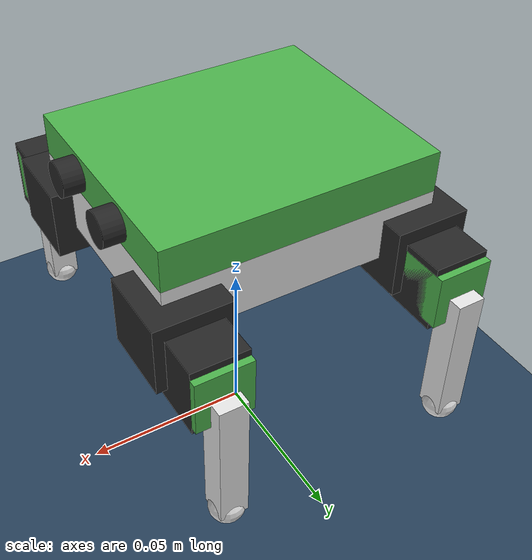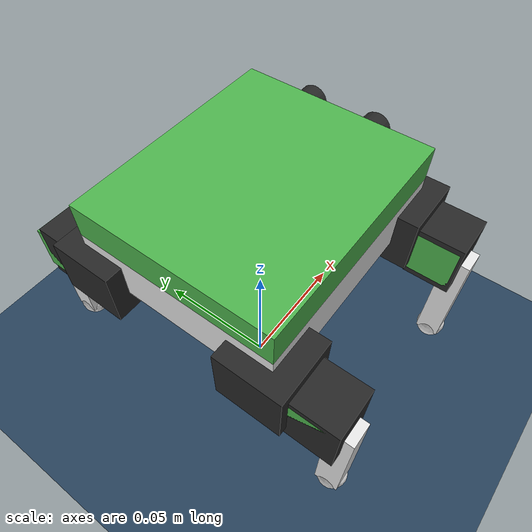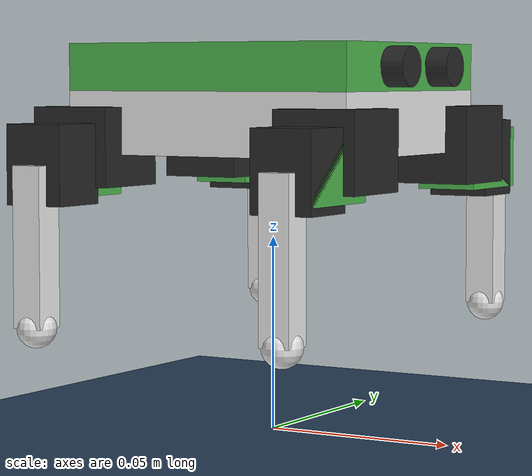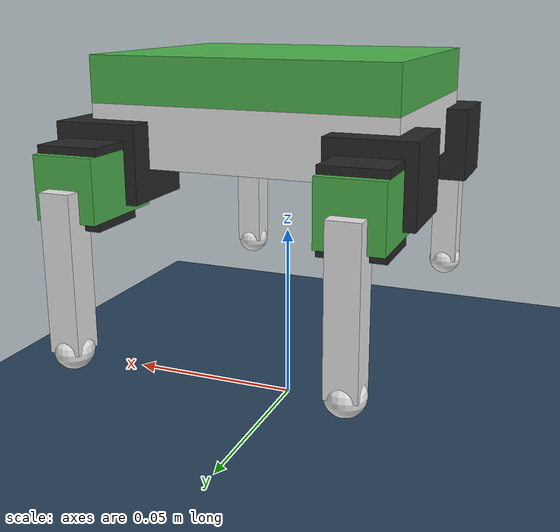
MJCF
<mujoco model="sesame">
  <compiler angle="radian" coordinate="local" balanceinertia="true"/>

  <option timestep="0.002" gravity="0 0 -9.81"/>

  <asset>
    <!-- Visual assets/materials -->
    <texture name="grid" type="2d" builtin="checker" rgb1=".1 .2 .3" rgb2=".2 .3 .4" width="300" height="300"/>
    <material name="grid_mat" texture="grid" texrepeat="5 5" reflectance="0.2"/>
    <material name="body_mat" rgba="0.9 0.9 0.9 1.0"/> <!-- White bottom cover/chassis -->
    <material name="cover_mat" rgba="0.3 0.7 0.3 1.0"/> <!-- Green top cover & femur -->
    <material name="servo_mat" rgba="0.15 0.15 0.15 1.0"/> <!-- Black servos/eyes -->
    <material name="tibia_mat" rgba="0.9 0.9 0.9 1.0"/> <!-- White tibia legs -->
  </asset>

  <worldbody>
    <!-- Ground Plane -->
    <geom name="floor" type="plane" size="0 0 .25" pos="0 0 0" material="grid_mat" condim="3" friction="1.0 0.005 0.0001"/>

    <!-- Sun/Light -->
    <light directional="true" diffuse=".8 .8 .8" specular=".2 .2 .2" pos="0 0 5" dir="0 0 -1"/>

    <!-- Robot Base Link (Trunk) -->
    <!-- Initialized slightly off the ground -->
    <body name="base_link" pos="0 0 0.08">
      <freejoint name="root"/>
      <inertial pos="0 0 0" mass="0.130" diaginertia="5.29e-5 7.21e-5 1.19e-4"/>

      <!-- Visual and collision body -->
      <geom type="box" size="0.040 0.034 0.008" material="body_mat" condim="3"/>
      <!-- Green Top Cover -->
      <geom type="box" size="0.040 0.034 0.006" pos="0 0 0.014" material="cover_mat"/>

      <!-- Ultrasonic sensor "eyes" -->
      <geom type="cylinder" fromto="0.040 -0.012 0.014 0.046 -0.012 0.014" size="0.005" material="servo_mat"/>
      <geom type="cylinder" fromto="0.040 0.012 0.014 0.046 0.012 0.014" size="0.005" material="servo_mat"/>

      <!-- Hip Yaw Servos inside chassis corners -->
      <geom type="box" size="0.011 0.011 0.010" pos="0.035 -0.030 -0.006" material="servo_mat"/>
      <geom type="box" size="0.011 0.011 0.010" pos="-0.035 -0.030 -0.006" material="servo_mat"/>
      <geom type="box" size="0.011 0.011 0.010" pos="0.035 0.030 -0.006" material="servo_mat"/>
      <geom type="box" size="0.011 0.011 0.010" pos="-0.035 0.030 -0.006" material="servo_mat"/>

      <!-- ==================== FRONT RIGHT LEG ==================== -->
      <body name="front_right_femur" pos="0.035 -0.030 -0.010">
        <joint name="front_right_hip" type="hinge" axis="0 0 1" range="-0.7854 1.5708" damping="0.1" frictionloss="0.02"/>
        <inertial pos="0 -0.0125 0" mass="0.015" diaginertia="2.56e-6 2.56e-6 2.0e-7"/>
        <geom type="box" size="0.008 0.0125 0.008" pos="0 -0.0125 0" material="cover_mat"/>
        <!-- Knee Servo -->
        <geom type="box" size="0.008 0.008 0.010" pos="0 -0.018 0" material="servo_mat"/>

        <body name="front_right_tibia" pos="0 -0.025 0">
          <joint name="front_right_knee" type="hinge" axis="1 0 0" range="-1.5708 0.0" damping="0.1" frictionloss="0.02"/>
          <inertial pos="0 0 -0.020" mass="0.005" diaginertia="1.26e-6 1.26e-6 5.0e-8"/>
          <geom type="box" size="0.004 0.004 0.020" pos="0 0 -0.020" material="tibia_mat"/>
          <!-- Foot tip contact sphere -->
          <geom name="front_right_foot" type="sphere" size="0.005" pos="0 0 -0.040" condim="3" friction="1.0 0.005 0.0001" material="tibia_mat"/>
        </body>
      </body>

      <!-- ==================== BACK RIGHT LEG ==================== -->
      <body name="back_right_femur" pos="-0.035 -0.030 -0.010">
        <joint name="back_right_hip" type="hinge" axis="0 0 1" range="-1.5708 0.7854" damping="0.1" frictionloss="0.02"/>
        <inertial pos="0 -0.0125 0" mass="0.015" diaginertia="2.56e-6 2.56e-6 2.0e-7"/>
        <geom type="box" size="0.008 0.0125 0.008" pos="0 -0.0125 0" material="cover_mat"/>
        <!-- Knee Servo -->
        <geom type="box" size="0.008 0.008 0.010" pos="0 -0.018 0" material="servo_mat"/>

        <body name="back_right_tibia" pos="0 -0.025 0">
          <joint name="back_right_knee" type="hinge" axis="1 0 0" range="-1.5708 0.0" damping="0.1" frictionloss="0.02"/>
          <inertial pos="0 0 -0.020" mass="0.005" diaginertia="1.26e-6 1.26e-6 5.0e-8"/>
          <geom type="box" size="0.004 0.004 0.020" pos="0 0 -0.020" material="tibia_mat"/>
          <geom name="back_right_foot" type="sphere" size="0.005" pos="0 0 -0.040" condim="3" friction="1.0 0.005 0.0001" material="tibia_mat"/>
        </body>
      </body>

      <!-- ==================== FRONT LEFT LEG ==================== -->
      <body name="front_left_femur" pos="0.035 0.030 -0.010">
        <joint name="front_left_hip" type="hinge" axis="0 0 -1" range="-0.7854 1.5708" damping="0.1" frictionloss="0.02"/>
        <inertial pos="0 0.0125 0" mass="0.015" diaginertia="2.56e-6 2.56e-6 2.0e-7"/>
        <geom type="box" size="0.008 0.0125 0.008" pos="0 0.0125 0" material="cover_mat"/>
        <!-- Knee Servo -->
        <geom type="box" size="0.008 0.008 0.010" pos="0 0.015 0" material="servo_mat"/>

        <body name="front_left_tibia" pos="0 0.025 0">
          <joint name="front_left_knee" type="hinge" axis="-1 0 0" range="-1.5708 0.0" damping="0.1" frictionloss="0.02"/>
          <inertial pos="0 0 -0.020" mass="0.005" diaginertia="1.26e-6 1.26e-6 5.0e-8"/>
          <geom type="box" size="0.004 0.004 0.020" pos="0 0 -0.020" material="tibia_mat"/>
          <geom name="front_left_foot" type="sphere" size="0.005" pos="0 0 -0.040" condim="3" friction="1.0 0.005 0.0001" material="tibia_mat"/>
        </body>
      </body>

      <!-- ==================== BACK LEFT LEG ==================== -->
      <body name="back_left_femur" pos="-0.035 0.030 -0.010">
        <joint name="back_left_hip" type="hinge" axis="0 0 -1" range="-1.5708 0.7854" damping="0.1" frictionloss="0.02"/>
        <inertial pos="0 0.0125 0" mass="0.015" diaginertia="2.56e-6 2.56e-6 2.0e-7"/>
        <geom type="box" size="0.008 0.0125 0.008" pos="0 0.0125 0" material="cover_mat"/>
        <!-- Knee Servo -->
        <geom type="box" size="0.008 0.008 0.010" pos="0 0.015 0" material="servo_mat"/>

        <body name="back_left_tibia" pos="0 0.025 0">
          <joint name="back_left_knee" type="hinge" axis="-1 0 0" range="-1.5708 0.0" damping="0.1" frictionloss="0.02"/>
          <inertial pos="0 0 -0.020" mass="0.005" diaginertia="1.26e-6 1.26e-6 5.0e-8"/>
          <geom type="box" size="0.004 0.004 0.020" pos="0 0 -0.020" material="tibia_mat"/>
          <geom name="back_left_foot" type="sphere" size="0.005" pos="0 0 -0.040" condim="3" friction="1.0 0.005 0.0001" material="tibia_mat"/>
        </body>
      </body>

    </body>
  </worldbody>

  <!-- Actuators definition mapping to joints with SG90 torque limits (1.6 kg-cm = 0.16 N-m) -->
  <actuator>
    <position name="front_right_hip_act" joint="front_right_hip" kp="12.0" ctrlrange="-0.7854 1.5708" forcerange="-0.16 0.16"/>
    <position name="front_right_knee_act" joint="front_right_knee" kp="12.0" ctrlrange="-1.5708 0.0" forcerange="-0.16 0.16"/>
    <position name="back_right_hip_act" joint="back_right_hip" kp="12.0" ctrlrange="-1.5708 0.7854" forcerange="-0.16 0.16"/>
    <position name="back_right_knee_act" joint="back_right_knee" kp="12.0" ctrlrange="-1.5708 0.0" forcerange="-0.16 0.16"/>
    <position name="front_left_hip_act" joint="front_left_hip" kp="12.0" ctrlrange="-0.7854 1.5708" forcerange="-0.16 0.16"/>
    <position name="front_left_knee_act" joint="front_left_knee" kp="12.0" ctrlrange="-1.5708 0.0" forcerange="-0.16 0.16"/>
    <position name="back_left_hip_act" joint="back_left_hip" kp="12.0" ctrlrange="-1.5708 0.7854" forcerange="-0.16 0.16"/>
    <position name="back_left_knee_act" joint="back_left_knee" kp="12.0" ctrlrange="-1.5708 0.0" forcerange="-0.16 0.16"/>
  </actuator>
</mujoco>
